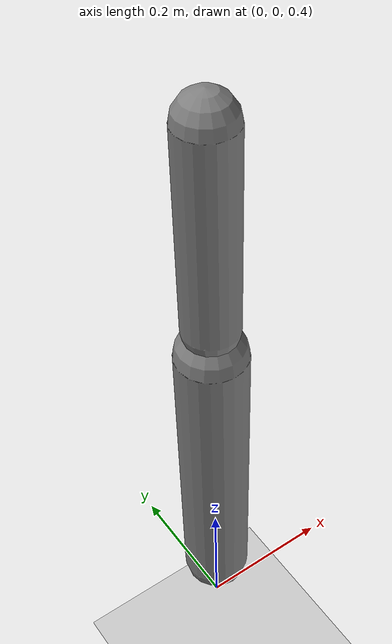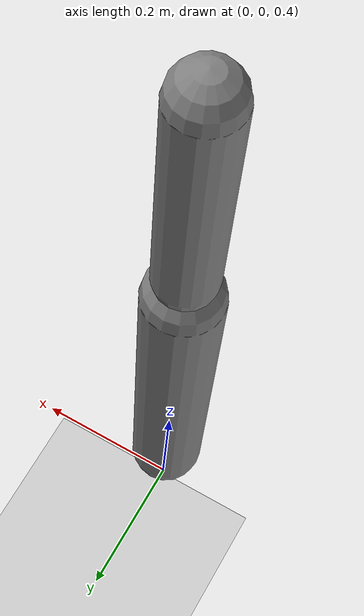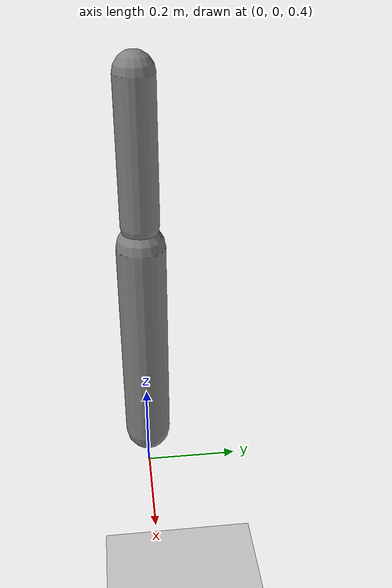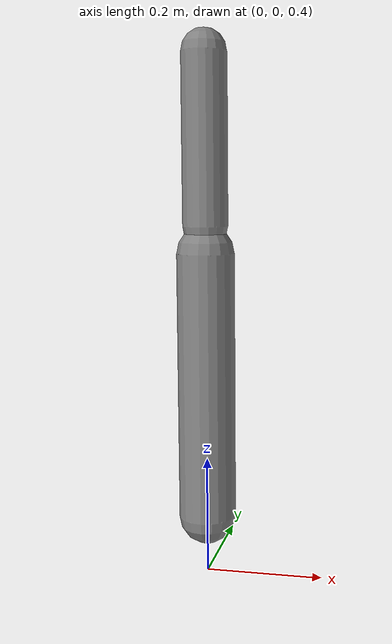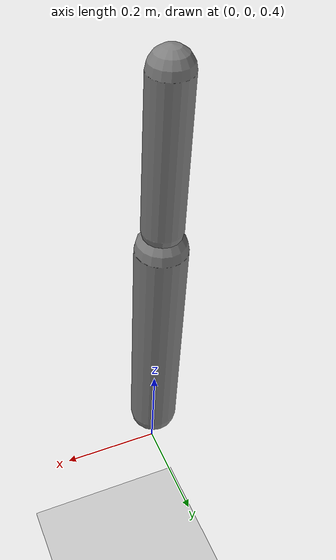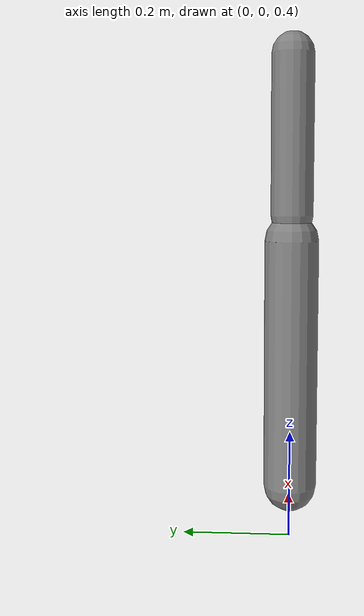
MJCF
<?xml version='1.0' encoding='UTF-8'?>
<mujoco model="RobotModel">
  <option gravity="0 0 -9.81" timestep="0.002" solver="CG" iterations="500" integrator="Euler"/>
  <worldbody>
    <geom name="Floor" type="plane" size="10 10 0.1" pos="0 0 0" rgba="0.8 0.8 0.8 1"/>
    <body name="Limb0" pos="0 0 0.5">
      <geom type="capsule" fromto="0 0 0 0 0 0.4553295437594453" size="0.04859530260072623" density="1000" contype="0" conaffinity="0"/>
      <body name="Limb0_c4d33f0c" pos="0 0 0.5">
        <geom type="capsule" fromto="0 0 0 0 0 0.2823123352731264" size="0.03790828186038744" density="800" contype="0" conaffinity="0"/>
        <joint name="Joint_Limb0_Limb0_c4d33f0c_0" type="hinge" axis="1 0 0" range="-60 60"/>
      </body>
      <body name="Limb1_c4d33f0c" pos="0 0 0.4553295437594453">
        <geom type="capsule" fromto="0 0 0 0 0 0.13636377984417675" size="0.03245914461837859" density="800" contype="0" conaffinity="0"/>
        <joint name="Joint_Limb0_Limb1_c4d33f0c_0" type="hinge" axis="0 1 0" range="-45 45"/>
      </body>
    </body>
  </worldbody>
  <actuator>
    <position name="position_Actuator_Joint_Limb0_Limb0_c4d33f0c_0" joint="Joint_Limb0_Limb0_c4d33f0c_0" gear="1.0"/>
    <position name="position_Actuator_Joint_Limb0_Limb1_c4d33f0c_0" joint="Joint_Limb0_Limb1_c4d33f0c_0" gear="1.0"/>
  </actuator>
</mujoco>
